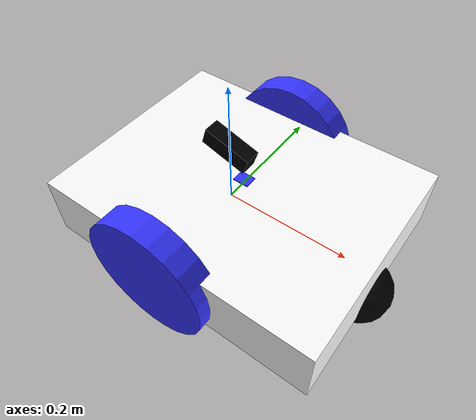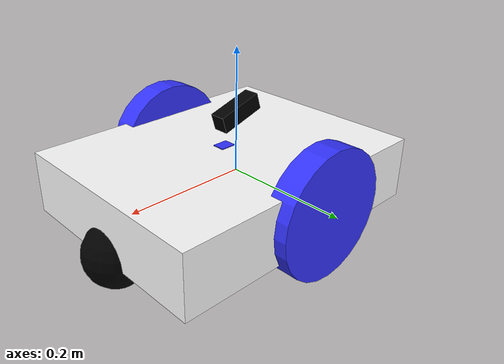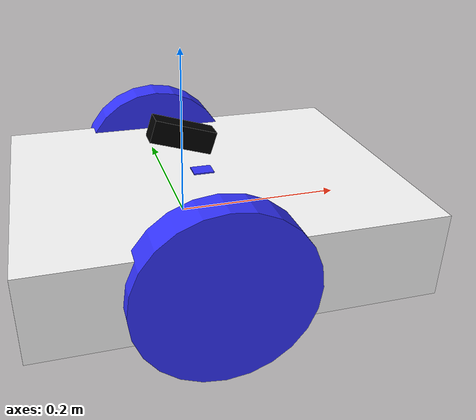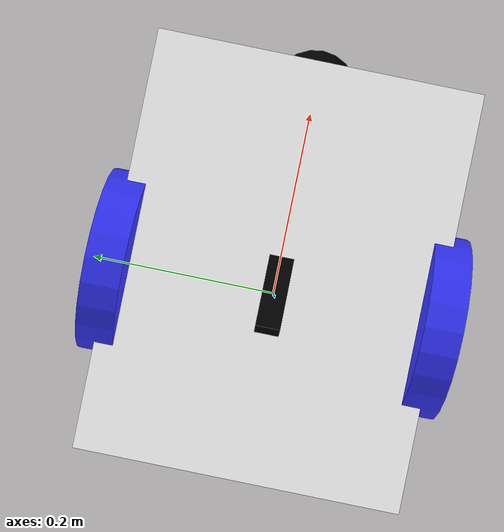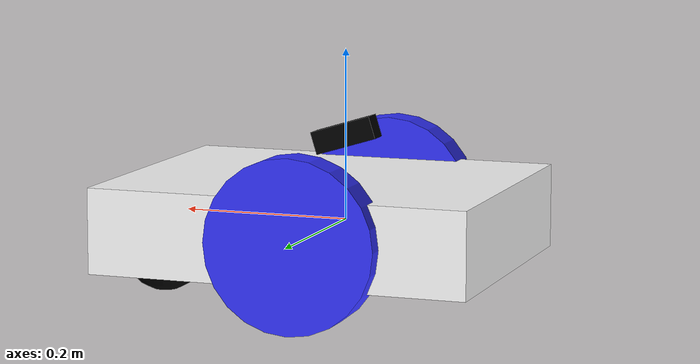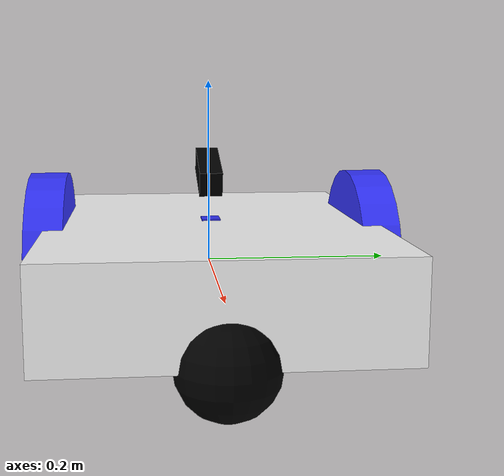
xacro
<?xml version="1.0"?>
<robot name="robovacuum"
  xmlns:xacro="http://ros.org/wiki/xacro">

  <xacro:arg name="is_ignition" default="true"/>

  <xacro:arg name="is_sim" default="true"/>

  <!-- Include ros2_control Plugins -->
  <xacro:include filename="$(find robovacuum_description)/urdf/robovacuum_ros2_control.xacro" />

  <xacro:include filename="$(find robovacuum_description)/urdf/inertial_macros.xacro" />
  <!--Inculude Gazebo Parameters-->
  <xacro:include filename="$(find robovacuum_description)/urdf/robovacuum_gazebo.xacro" />

  <material name="white">
    <color rgba="1 1 1 1"/>
  </material>

  <material name="orange">
    <color rgba="1 0.3 0.1 1"/>
  </material>

  <material name="blue">
    <color rgba="0.2 0.2 1 1"/>
  </material>

  <material name="black">
    <color rgba="0 0 0 1"/>
  </material>

  <link name="base_link"/>
  <!--generally in the center of differential drive wheel-->
  <link name="base_footprint">
    <visual>
      <origin xyz="0.225 0 0.05"/>
      <geometry>
        <box size="0.45 0.35 0.1"/>
      </geometry>
      <material name="white"/>
    </visual>
    <collision>
      <origin xyz="0.225 0 0.05"/>
      <geometry>
        <box size="0.45 0.35 0.1"/>
      </geometry>
    </collision>
    <xacro:inertial_box mass="8" x="0.45" y="0.35" z="0.1">
      <origin xyz="0.225 0 0.05" rpy="0 0 0"/>
    </xacro:inertial_box>
  </link>

  <link name="wheel_left_link">
    <visual>
      <geometry>
        <cylinder radius="0.1" length="0.04"/>
      </geometry>
      <material name="blue"/>
    </visual>
    <collision>
      <geometry>
        <cylinder radius="0.1" length="0.04"/>
      </geometry>
    </collision>
    <xacro:inertial_cylinder mass="0.7" length="0.04" radius="0.1">
      <origin xyz="0 0 0" rpy="0 0 0"/>
    </xacro:inertial_cylinder>
  </link>

  <link name="wheel_right_link">
    <visual>
      <geometry>
        <cylinder radius="0.1" length="0.04"/>
      </geometry>
      <material name="blue"/>
    </visual>
    <collision>
      <geometry>
        <cylinder radius="0.1" length="0.04"/>
      </geometry>
    </collision>
    <xacro:inertial_cylinder mass="0.7" length="0.04" radius="0.1">
      <origin xyz="0 0 0" rpy="0 0 0"/>
    </xacro:inertial_cylinder>
  </link>

  <link name="caster_wheel">
    <visual>
      <geometry>
        <sphere radius="0.05"/>
      </geometry>
      <material name="black"/>
    </visual>
    <collision>
      <geometry>
        <sphere radius="0.02"/>
      </geometry>
    </collision>
    <xacro:inertial_sphere mass="0.12" radius="0.02">
      <origin xyz="0 0 0" rpy="0 0 0"/>
    </xacro:inertial_sphere>
  </link>

  <link name="imu_link">
    <visual>
      <geometry>
        <box size="0.025 0.02 0.003"/>
        <!-- BNO055 dimensions: 25x20x3mm -->
      </geometry>
      <material name="blue"/>
    </visual>
    <collision>
      <geometry>
        <box size="0.025 0.02 0.003"/>
      </geometry>
    </collision>
    <xacro:inertial_box mass="0.003" x="0.025" y="0.02" z="0.003">
      <origin xyz="0 0 0" rpy="0 0 0"/>
    </xacro:inertial_box>
  </link>

  <!-- ============ CAMERA LINK ============ -->
  <link name="camera_link">
    <visual>
      <geometry>
        <box size="0.075 0.025 0.027"/>
        <!-- Kinect v2 dimensions -->
      </geometry>
      <material name="black"/>
      <origin xyz="0 0 0" rpy="0 0 0"/>
    </visual>
    <collision>
      <geometry>
        <box size="0.075 0.025 0.027"/>
      </geometry>
      <origin xyz="0 0 0" rpy="0 0 0"/>
    </collision>
    <inertial>
      <mass value="0.5"/>
      <inertia ixx="0.001" ixy="0" ixz="0" iyy="0.001" iyz="0" izz="0.001"/>
    </inertial>
  </link>

  <joint name="base_joint" type="fixed">
    <parent link="base_link"/>
    <child link="base_footprint"/>
    <origin xyz="-0.2 0 -0.05"/>
  </joint>

  <joint name="wheel_left_joint" type="continuous">
    <parent link="base_link"/>
    <child link="wheel_left_link"/>
    <origin xyz="0 0.175 0" rpy="-${pi/2} 0 0"/>
    <axis xyz="0 0 1"/>
  </joint>

  <joint name="wheel_right_joint" type="continuous">
    <parent link="base_link"/>
    <child link="wheel_right_link"/>
    <origin xyz="0 -0.175 0" rpy="${pi/2} 0 0"/>
    <axis xyz="0 0 -1"/>
  </joint>

  <joint name="caster_wheel_joint" type="fixed">
    <parent link="base_footprint"/>
    <child link="caster_wheel"/>
    <origin xyz="0.43 0 0"/>
  </joint>

  <joint name="imu_joint" type="fixed">
    <parent link="base_footprint"/>
    <child link="imu_link"/>
    <origin xyz="0.225 0 0.1" rpy="0 0 0"/>
  </joint>

  <joint name="camera_joint" type="fixed">
    <parent link="base_footprint"/>
    <child link="camera_link"/>
    <origin xyz="0.2 0 0.15" rpy="0 0.3 0"/>
    <!-- 0.3 rad tilt = ~17 degrees down to see floor ahead -->
  </joint>

  <!-- Camera optical frame (required for image processing) -->
  <link name="camera_depth_frame"/>
  <joint name="camera_depth_joint" type="fixed">
    <parent link="camera_link"/>
    <child link="camera_depth_frame"/>
    <origin xyz="0 0 0" rpy="-1.5708 0 -1.5708"/>
    <!-- Rotation to align with ROS camera conventions -->
  </joint>
</robot>
